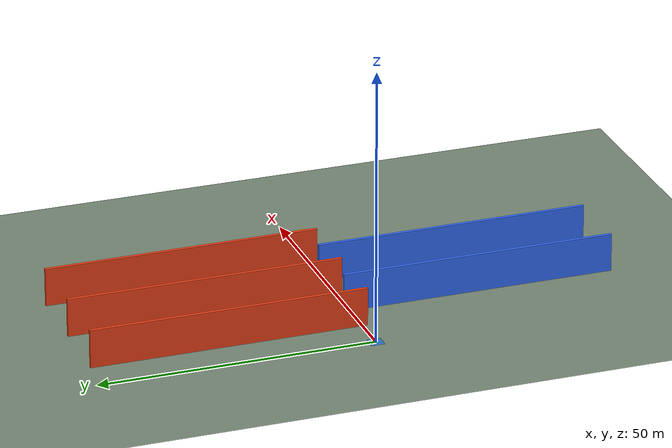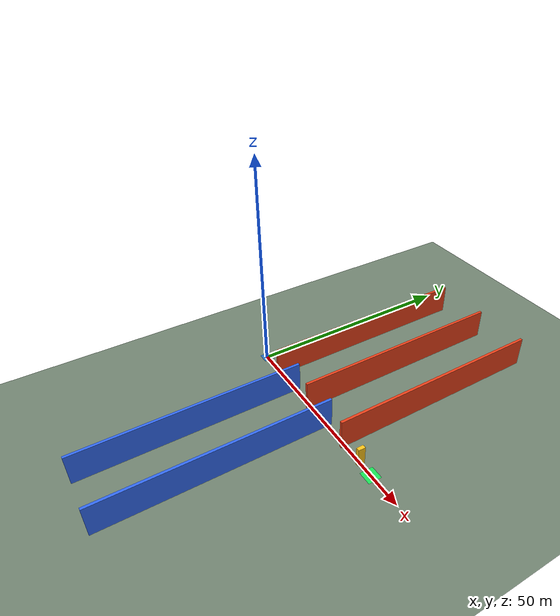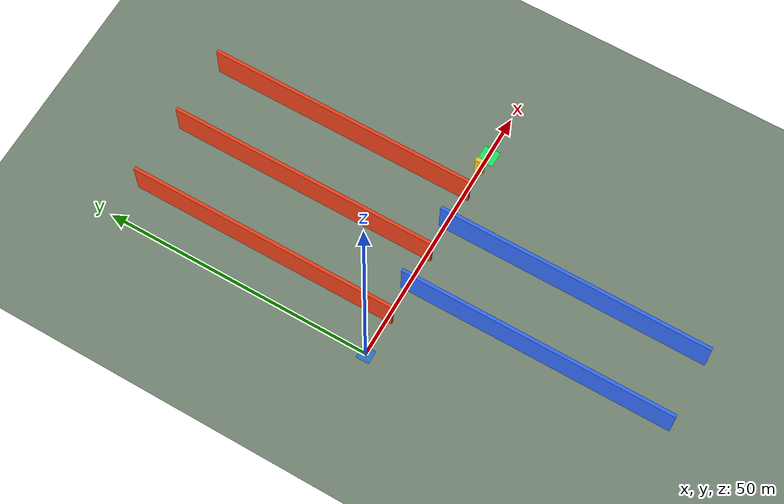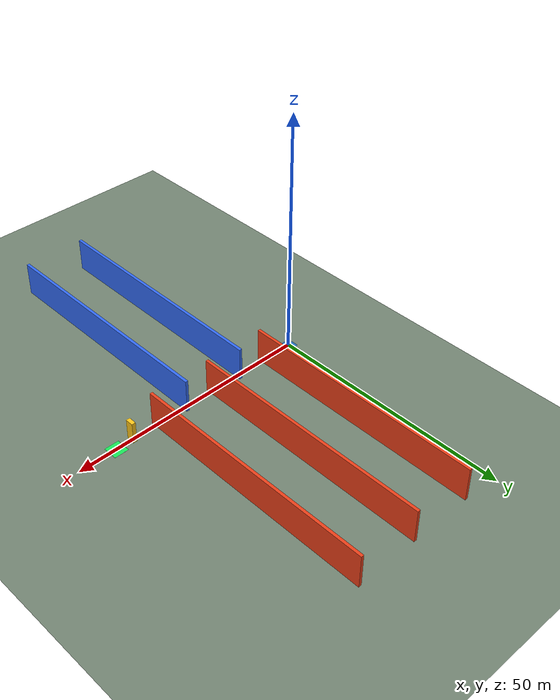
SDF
<?xml version="1.0" encoding="UTF-8"?>
<sdf version="1.9">
  <!-- A static, deliberately mixed obstacle course.  It contains no flight path,
       plugins, or controller hints: the vehicle only sees its normal LiDAR scan. -->
  <world name="challenge_yolo">
    <physics name="physics" type="ode"><max_step_size>0.004</max_step_size><real_time_factor>1.0</real_time_factor><real_time_update_rate>250</real_time_update_rate></physics>
    <gravity>0 0 -9.8</gravity><magnetic_field>6e-06 2.3e-05 -4.2e-05</magnetic_field><atmosphere type="adiabatic"/>
    <scene><grid>true</grid><ambient>0.6 0.6 0.6 1</ambient><background>0.65 0.80 0.95 1</background><shadows>true</shadows></scene>
    <spherical_coordinates><surface_model>EARTH_WGS84</surface_model><world_frame_orientation>ENU</world_frame_orientation><latitude_deg>47.397971057728974</latitude_deg><longitude_deg>8.546163739800146</longitude_deg><elevation>0</elevation></spherical_coordinates>

    <!-- Standard Gazebo free camera: mouse controlled, never follows the drone. -->
    <gui fullscreen="0">
      <plugin filename="MinimalScene" name="3D View"><gz-gui><title>3D View</title><property type="bool" key="showTitleBar">false</property><property type="string" key="state">docked</property></gz-gui><engine>ogre2</engine><scene>scene</scene><ambient_light>0.4 0.4 0.4</ambient_light><background_color>0.8 0.8 0.8</background_color></plugin>
      <plugin filename="EntityContextMenuPlugin" name="Entity context menu"><gz-gui><property key="state" type="string">floating</property><property key="width" type="double">5</property><property key="height" type="double">5</property><property key="showTitleBar" type="bool">false</property></gz-gui></plugin>
      <plugin filename="GzSceneManager" name="Scene Manager"><gz-gui><property key="state" type="string">floating</property><property key="width" type="double">5</property><property key="height" type="double">5</property><property key="showTitleBar" type="bool">false</property></gz-gui></plugin>
      <plugin filename="InteractiveViewControl" name="Interactive view control"><gz-gui><property key="state" type="string">floating</property><property key="width" type="double">5</property><property key="height" type="double">5</property><property key="showTitleBar" type="bool">false</property></gz-gui></plugin>
      <plugin filename="SelectEntities" name="Select Entities"><gz-gui><property key="state" type="string">floating</property><property key="width" type="double">5</property><property key="height" type="double">5</property><property key="showTitleBar" type="bool">false</property></gz-gui></plugin>
    </gui>

    <model name="ground_plane"><static>true</static><link name="link"><collision name="ground_collision"><geometry><plane><normal>0 0 1</normal><size>100 100</size></plane></geometry></collision><visual name="ground_visual"><geometry><plane><normal>0 0 1</normal><size>100 100</size></plane></geometry><material><ambient>0.32 0.38 0.32 1</ambient><diffuse>0.45 0.52 0.45 1</diffuse></material></visual></link></model>
    <model name="takeoff_pad"><static>true</static><pose>0 0 0.003 0 0 0</pose><link name="link"><visual name="pad"><geometry><box><size>2.5 2.5 0.005</size></box></geometry><material><ambient>0.15 0.45 0.75 1</ambient><diffuse>0.15 0.45 0.75 1</diffuse></material></visual></link></model>

    <!-- Five alternating one-sided gates: each gate forces a late side change.
         Closed ends extend outside the 48 m run boundary, avoiding shortcuts. -->
    <model name="challenge_gate_1"><static>true</static><pose>7 24 3.5 0 0 0</pose><link name="link"><collision name="collision"><geometry><box><size>0.6 50 7</size></box></geometry></collision><visual name="visual"><geometry><box><size>0.6 50 7</size></box></geometry><material><ambient>0.85 0.20 0.09 1</ambient><diffuse>0.92 0.25 0.10 1</diffuse></material></visual></link></model>
    <model name="challenge_gate_2"><static>true</static><pose>13.5 -24 3.5 0 0 0</pose><link name="link"><collision name="collision"><geometry><box><size>0.6 50 7</size></box></geometry></collision><visual name="visual"><geometry><box><size>0.6 50 7</size></box></geometry><material><ambient>0.13 0.30 0.86 1</ambient><diffuse>0.20 0.42 0.96 1</diffuse></material></visual></link></model>
    <model name="challenge_gate_3"><static>true</static><pose>20 24 3.5 0 0 0</pose><link name="link"><collision name="collision"><geometry><box><size>0.6 50 7</size></box></geometry></collision><visual name="visual"><geometry><box><size>0.6 50 7</size></box></geometry><material><ambient>0.85 0.20 0.09 1</ambient><diffuse>0.92 0.25 0.10 1</diffuse></material></visual></link></model>
    <model name="challenge_gate_4"><static>true</static><pose>26.5 -24 3.5 0 0 0</pose><link name="link"><collision name="collision"><geometry><box><size>0.6 50 7</size></box></geometry></collision><visual name="visual"><geometry><box><size>0.6 50 7</size></box></geometry><material><ambient>0.13 0.30 0.86 1</ambient><diffuse>0.20 0.42 0.96 1</diffuse></material></visual></link></model>
    <model name="challenge_gate_5"><static>true</static><pose>33 24 3.5 0 0 0</pose><link name="link"><collision name="collision"><geometry><box><size>0.6 50 7</size></box></geometry></collision><visual name="visual"><geometry><box><size>0.6 50 7</size></box></geometry><material><ambient>0.85 0.20 0.09 1</ambient><diffuse>0.92 0.25 0.10 1</diffuse></material></visual></link></model>

    <model name="offset_barrier"><static>true</static><pose>38.5 0 2.2 0 0 0</pose><link name="link"><collision name="collision"><geometry><box><size>0.8 1.6 4.4</size></box></geometry></collision><visual name="visual"><geometry><box><size>0.8 1.6 4.4</size></box></geometry><material><ambient>0.95 0.72 0.08 1</ambient><diffuse>1.0 0.78 0.10 1</diffuse></material></visual></link></model>
    <model name="finish_pad"><static>true</static><pose>42 0 0.004 0 0 0</pose><link name="link"><visual name="visual"><geometry><box><size>3 3 0.006</size></box></geometry><material><ambient>0.1 0.9 0.35 1</ambient><diffuse>0.1 0.9 0.35 1</diffuse></material></visual></link></model>

    <plugin filename="gz-sim-physics-system" name="gz::sim::systems::Physics"/><plugin filename="gz-sim-user-commands-system" name="gz::sim::systems::UserCommands"/><plugin filename="gz-sim-scene-broadcaster-system" name="gz::sim::systems::SceneBroadcaster"/><plugin filename="gz-sim-sensors-system" name="gz::sim::systems::Sensors"><render_engine>ogre2</render_engine></plugin><plugin filename="gz-sim-imu-system" name="gz::sim::systems::Imu"/><plugin filename="gz-sim-air-pressure-system" name="gz::sim::systems::AirPressure"/><plugin filename="gz-sim-navsat-system" name="gz::sim::systems::NavSat"/><plugin filename="gz-sim-magnetometer-system" name="gz::sim::systems::Magnetometer"/>
  </world>
</sdf>
